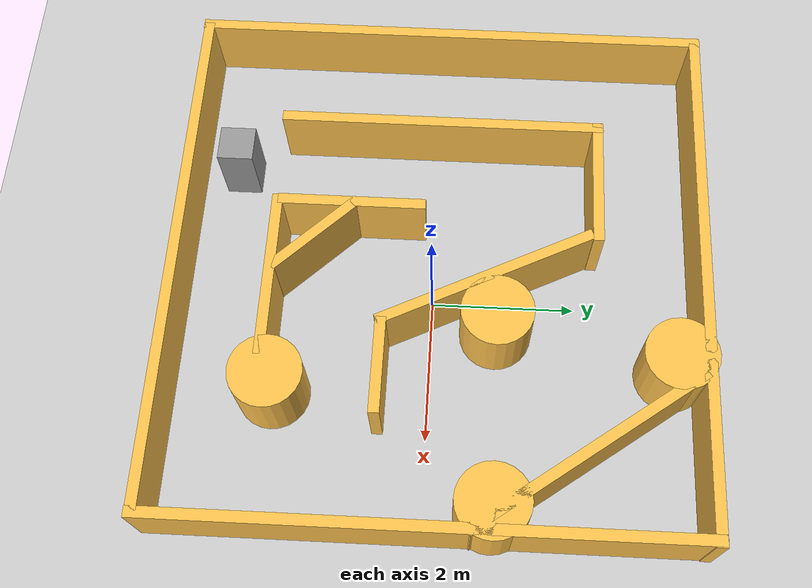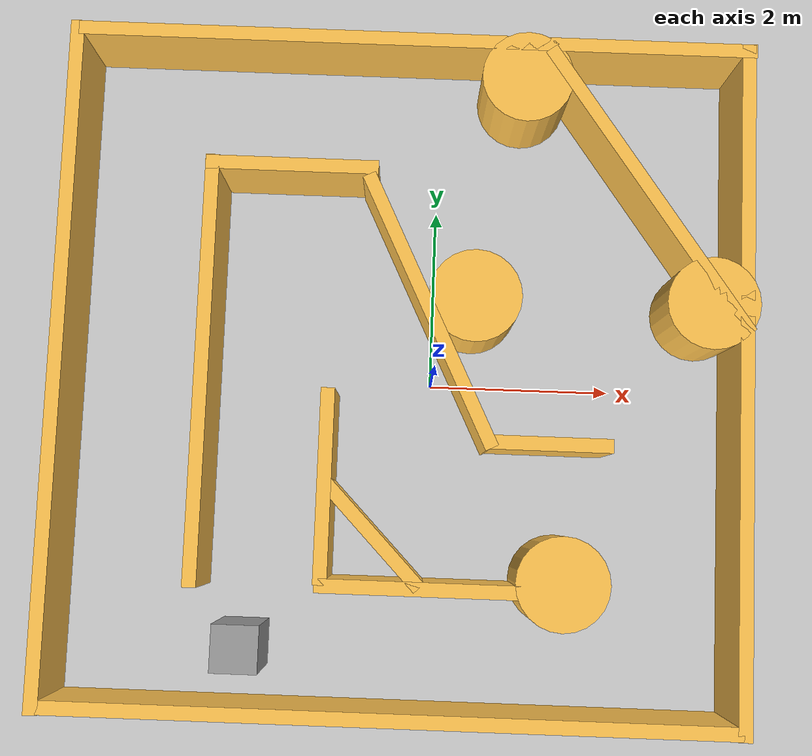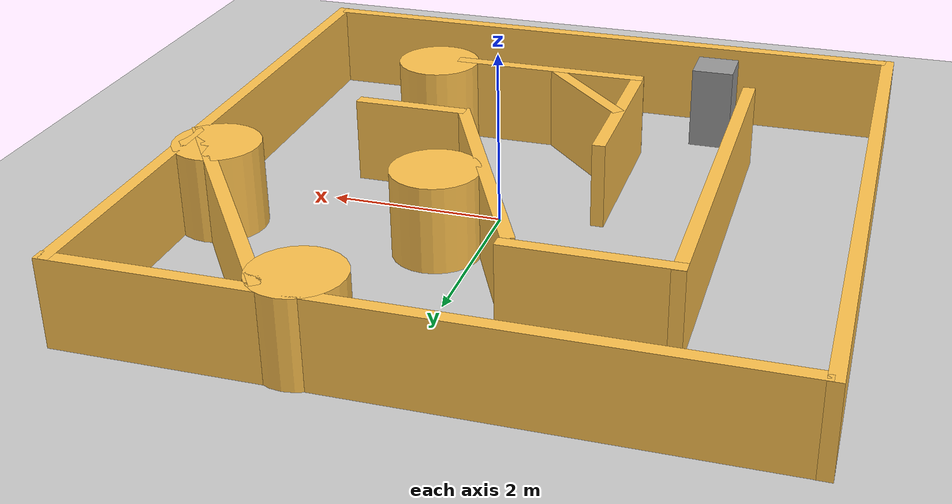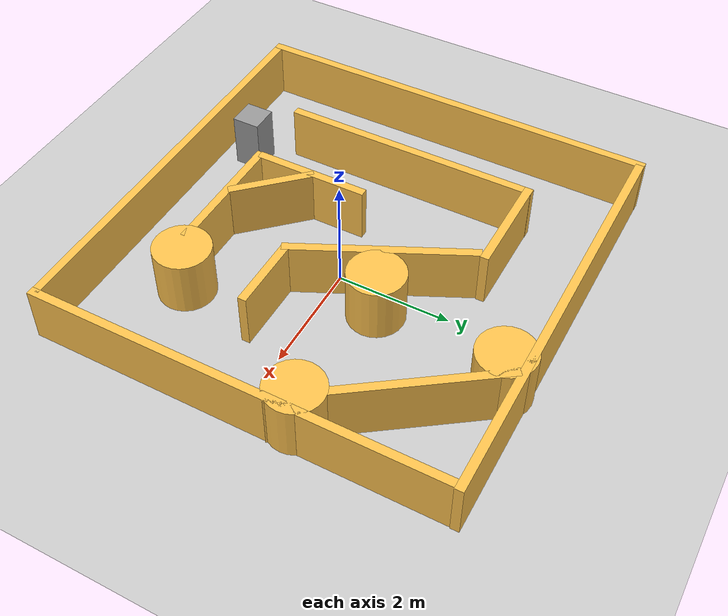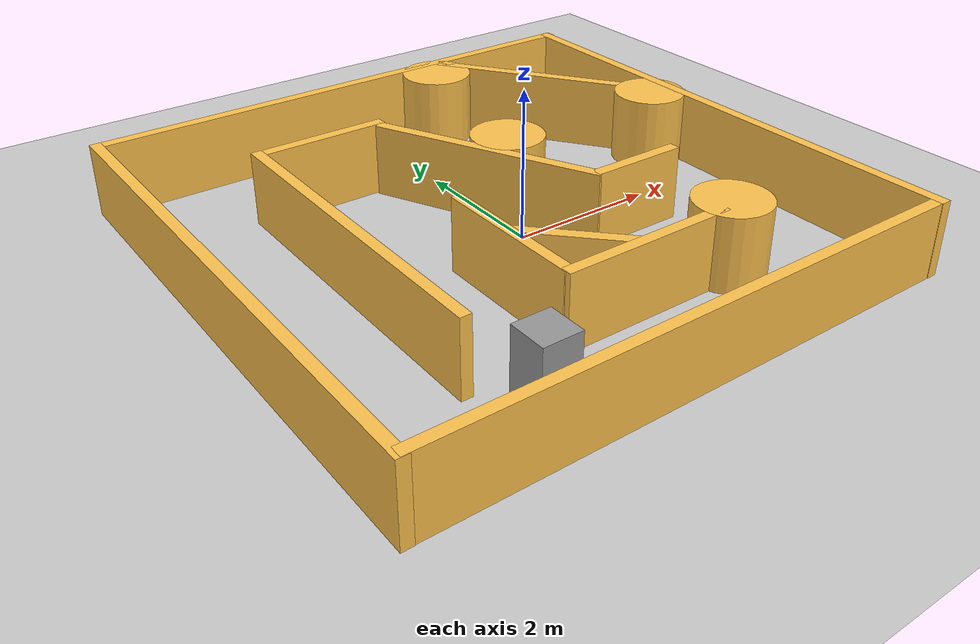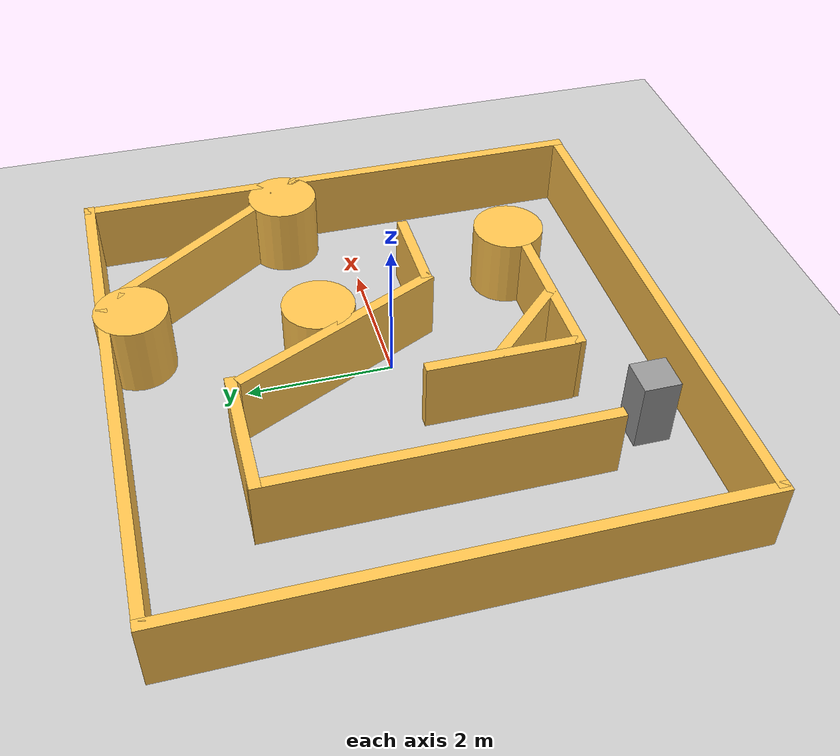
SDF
<sdf version="1.7">
 <world name="default">
  <light name="sun" type="directional">
   <pose>0 0 10 0 -0 0</pose>
   <diffuse>0.8 0.8 0.8 1</diffuse>
   <specular>0.2 0.2 0.2 1</specular>
   <attenuation>
    <range>1000</range>
    <constant>0.9</constant>
    <linear>0.01</linear>
    <quadratic>0.001</quadratic>
   </attenuation>
   <direction>-0.5 0.1 -0.9</direction>
   <spot><inner_angle>0</inner_angle><outer_angle>0</outer_angle><falloff>0</falloff></spot>
  </light>
  <model name="ground_plane">
   <static>1</static>
   <link name="link">
    <collision name="collision">
     <geometry><plane><normal>0 0 1</normal><size>100 100</size></plane></geometry>
     <surface><friction><ode><mu>100</mu><mu2>50</mu2></ode></friction></surface>
    </collision>
    <visual name="visual">
     <cast_shadows>0</cast_shadows>
     <geometry><plane><normal>0 0 1</normal><size>100 100</size></plane></geometry>
     <material>
      <script><uri>file://media/materials/scripts/gazebo.material</uri><name>Gazebo/Grey</name></script>
     </material>
    </visual>
   </link>
  </model>
  <gravity>0 0 -9.8</gravity>
  <magnetic_field>6e-06 2.3e-05 -4.2e-05</magnetic_field>
  <atmosphere type="adiabatic"/>
  <physics type="ode">
   <max_step_size>0.001</max_step_size>
   <real_time_factor>1</real_time_factor>
   <real_time_update_rate>1000</real_time_update_rate>
  </physics>
  <scene><ambient>0.4 0.4 0.4 1</ambient><background>0.7 0.7 0.7 1</background><shadows>1</shadows></scene>
  <audio><device>default</device></audio>
  <spherical_coordinates>
   <surface_model>EARTH_WGS84</surface_model>
   <latitude_deg>0</latitude_deg>
   <longitude_deg>0</longitude_deg>
   <elevation>0</elevation>
   <heading_deg>0</heading_deg>
  </spherical_coordinates>
  <model name="small_warehouse">
   <link name="Wall_10">
    <pose>-2.02568 2.92333 0 0 -0 3.14159</pose>
    <visual name="Wall_10_Visual">
     <pose>0 0 0.5 0 -0 0</pose>
     <geometry><box><size>1.8711 0.15 1</size></box></geometry>
     <material>
      <script><uri>file://media/materials/scripts/gazebo.material</uri><name>Gazebo/Grey</name></script>
      <ambient>1 0.764706 0.305882 1</ambient>
      <diffuse>0.7 0.7 0.7 1</diffuse>
      <specular>0.01 0.01 0.01 1</specular>
      <emissive>0 0 0 1</emissive>
      <shader type="pixel"/>
     </material>
    </visual>
    <collision name="Wall_10_Collision">
     <pose>0 0 0.5 0 -0 0</pose>
     <geometry><box><size>1.8711 0.15 1</size></box></geometry>
     <surface>
      <friction><ode><mu>1</mu><mu2>1</mu2><fdir1>0 0 0</fdir1><slip1>0</slip1><slip2>0</slip2></ode></friction>
      <bounce><restitution_coefficient>0</restitution_coefficient><threshold>1e+06</threshold></bounce>
      <contact>
       <collide_without_contact>0</collide_without_contact>
       <collide_without_contact_bitmask>1</collide_without_contact_bitmask>
       <collide_bitmask>1</collide_bitmask>
       <ode>
        <soft_cfm>0</soft_cfm>
        <soft_erp>0.2</soft_erp>
        <kp>1e+13</kp>
        <kd>1</kd>
        <max_vel>0.01</max_vel>
        <min_depth>0</min_depth>
       </ode>
       <bullet>
        <split_impulse>1</split_impulse>
        <split_impulse_penetration_threshold>-0.01</split_impulse_penetration_threshold>
        <soft_cfm>0</soft_cfm>
        <soft_erp>0.2</soft_erp>
        <kp>1e+13</kp>
        <kd>1</kd>
       </bullet>
      </contact>
     </surface>
    </collision>
   </link>
   <link name="Wall_11">
    <pose>-2.887 0.69235 0 0 0 -1.5708</pose>
    <visual name="Wall_11_Visual">
     <pose>0 0 0.5 0 -0 0</pose>
     <geometry><box><size>4.62378 0.15 1</size></box></geometry>
     <material>
      <script><uri>file://media/materials/scripts/gazebo.material</uri><name>Gazebo/Grey</name></script>
      <ambient>1 0.764706 0.305882 1</ambient>
      <diffuse>0.7 0.7 0.7 1</diffuse>
      <specular>0.01 0.01 0.01 1</specular>
      <emissive>0 0 0 1</emissive>
      <shader type="pixel"/>
     </material>
    </visual>
    <collision name="Wall_11_Collision">
     <pose>0 0 0.5 0 -0 0</pose>
     <geometry><box><size>4.62378 0.15 1</size></box></geometry>
     <surface>
      <friction><ode><mu>1</mu><mu2>1</mu2><fdir1>0 0 0</fdir1><slip1>0</slip1><slip2>0</slip2></ode></friction>
      <bounce><restitution_coefficient>0</restitution_coefficient><threshold>1e+06</threshold></bounce>
      <contact>
       <collide_without_contact>0</collide_without_contact>
       <collide_without_contact_bitmask>1</collide_without_contact_bitmask>
       <collide_bitmask>1</collide_bitmask>
       <ode>
        <soft_cfm>0</soft_cfm>
        <soft_erp>0.2</soft_erp>
        <kp>1e+13</kp>
        <kd>1</kd>
        <max_vel>0.01</max_vel>
        <min_depth>0</min_depth>
       </ode>
       <bullet>
        <split_impulse>1</split_impulse>
        <split_impulse_penetration_threshold>-0.01</split_impulse_penetration_threshold>
        <soft_cfm>0</soft_cfm>
        <soft_erp>0.2</soft_erp>
        <kp>1e+13</kp>
        <kd>1</kd>
       </bullet>
      </contact>
     </surface>
    </collision>
   </link>
   <link name="Wall_11_clone">
    <pose>-4.44208 0.738947 0 0 0 -1.5708</pose>
    <visual name="ModelPreview_2::Wall_11_clone::Wall_11_Visual">
     <pose>0 0 0.5 0 -0 0</pose>
     <geometry><box><size>7.42809 0.15 1</size></box></geometry>
     <material>
      <script><uri>file://media/materials/scripts/gazebo.material</uri><name>Gazebo/Grey</name></script>
      <ambient>1 0.764706 0.305882 1</ambient>
      <diffuse>0.7 0.7 0.7 1</diffuse>
      <specular>0.01 0.01 0.01 1</specular>
      <emissive>0 0 0 1</emissive>
      <shader type="pixel"/>
     </material>
    </visual>
    <collision name="Wall_11_Collision">
     <pose>0 0 0.5 0 -0 0</pose>
     <geometry><box><size>7.42809 0.15 1</size></box></geometry>
     <surface>
      <friction><ode><mu>1</mu><mu2>1</mu2><fdir1>0 0 0</fdir1><slip1>0</slip1><slip2>0</slip2></ode></friction>
      <bounce><restitution_coefficient>0</restitution_coefficient><threshold>1e+06</threshold></bounce>
      <contact>
       <collide_without_contact>0</collide_without_contact>
       <collide_without_contact_bitmask>1</collide_without_contact_bitmask>
       <collide_bitmask>1</collide_bitmask>
       <ode>
        <soft_cfm>0</soft_cfm>
        <soft_erp>0.2</soft_erp>
        <kp>1e+13</kp>
        <kd>1</kd>
        <max_vel>0.01</max_vel>
        <min_depth>0</min_depth>
       </ode>
       <bullet>
        <split_impulse>1</split_impulse>
        <split_impulse_penetration_threshold>-0.01</split_impulse_penetration_threshold>
        <soft_cfm>0</soft_cfm>
        <soft_erp>0.2</soft_erp>
        <kp>1e+13</kp>
        <kd>1</kd>
       </bullet>
      </contact>
     </surface>
    </collision>
   </link>
   <link name="Wall_14">
    <pose>-0.409926 -1.55115 0 0 -0 3.14159</pose>
    <visual name="Wall_14_Visual">
     <pose>0 0 0.5 0 -0 0</pose>
     <geometry><box><size>2.36648 0.15 1</size></box></geometry>
     <material>
      <script><uri>file://media/materials/scripts/gazebo.material</uri><name>Gazebo/Grey</name></script>
      <ambient>1 0.764706 0.305882 1</ambient>
      <diffuse>0.7 0.7 0.7 1</diffuse>
      <specular>0.01 0.01 0.01 1</specular>
      <emissive>0 0 0 1</emissive>
      <shader type="pixel"/>
     </material>
    </visual>
    <collision name="Wall_14_Collision">
     <pose>0 0 0.5 0 -0 0</pose>
     <geometry><box><size>2.36648 0.15 1</size></box></geometry>
     <surface>
      <friction><ode><mu>1</mu><mu2>1</mu2><fdir1>0 0 0</fdir1><slip1>0</slip1><slip2>0</slip2></ode></friction>
      <bounce><restitution_coefficient>0</restitution_coefficient><threshold>1e+06</threshold></bounce>
      <contact>
       <collide_without_contact>0</collide_without_contact>
       <collide_without_contact_bitmask>1</collide_without_contact_bitmask>
       <collide_bitmask>1</collide_bitmask>
       <ode>
        <soft_cfm>0</soft_cfm>
        <soft_erp>0.2</soft_erp>
        <kp>1e+13</kp>
        <kd>1</kd>
        <max_vel>0.01</max_vel>
        <min_depth>0</min_depth>
       </ode>
       <bullet>
        <split_impulse>1</split_impulse>
        <split_impulse_penetration_threshold>-0.01</split_impulse_penetration_threshold>
        <soft_cfm>0</soft_cfm>
        <soft_erp>0.2</soft_erp>
        <kp>1e+13</kp>
        <kd>1</kd>
       </bullet>
      </contact>
     </surface>
    </collision>
   </link>
   <link name="Wall_15">
    <pose>-1.53187 -0.513425 0 0 -0 1.5708</pose>
    <visual name="Wall_15_Visual">
     <pose>0 0 0.5 0 -0 0</pose>
     <geometry><box><size>2.06622 0.15 1</size></box></geometry>
     <material>
      <script><uri>file://media/materials/scripts/gazebo.material</uri><name>Gazebo/Grey</name></script>
      <ambient>1 0.764706 0.305882 1</ambient>
      <diffuse>0.7 0.7 0.7 1</diffuse>
      <specular>0.01 0.01 0.01 1</specular>
      <emissive>0 0 0 1</emissive>
      <shader type="pixel"/>
     </material>
    </visual>
    <collision name="Wall_15_Collision">
     <pose>0 0 0.5 0 -0 0</pose>
     <geometry><box><size>2.06622 0.15 1</size></box></geometry>
     <surface>
      <friction><ode><mu>1</mu><mu2>1</mu2><fdir1>0 0 0</fdir1><slip1>0</slip1><slip2>0</slip2></ode></friction>
      <bounce><restitution_coefficient>0</restitution_coefficient><threshold>1e+06</threshold></bounce>
      <contact>
       <collide_without_contact>0</collide_without_contact>
       <collide_without_contact_bitmask>1</collide_without_contact_bitmask>
       <collide_bitmask>1</collide_bitmask>
       <ode>
        <soft_cfm>0</soft_cfm>
        <soft_erp>0.2</soft_erp>
        <kp>1e+13</kp>
        <kd>1</kd>
        <max_vel>0.01</max_vel>
        <min_depth>0</min_depth>
       </ode>
       <bullet>
        <split_impulse>1</split_impulse>
        <split_impulse_penetration_threshold>-0.01</split_impulse_penetration_threshold>
        <soft_cfm>0</soft_cfm>
        <soft_erp>0.2</soft_erp>
        <kp>1e+13</kp>
        <kd>1</kd>
       </bullet>
      </contact>
     </surface>
    </collision>
   </link>
   <link name="Wall_19">
    <pose>0.837565 0.010614 0 0 -0 3.14159</pose>
    <visual name="Wall_19_Visual">
     <pose>0 0 0.5 0 -0 0</pose>
     <geometry><box><size>1.32777 0.15 1</size></box></geometry>
     <material>
      <script><uri>file://media/materials/scripts/gazebo.material</uri><name>Gazebo/Grey</name></script>
      <ambient>1 0.764706 0.305882 1</ambient>
      <diffuse>0.7 0.7 0.7 1</diffuse>
      <specular>0.01 0.01 0.01 1</specular>
      <emissive>0 0 0 1</emissive>
      <shader type="pixel"/>
     </material>
    </visual>
    <collision name="Wall_19_Collision">
     <pose>0 0 0.5 0 -0 0</pose>
     <geometry><box><size>1.32777 0.15 1</size></box></geometry>
     <surface>
      <friction><ode><mu>1</mu><mu2>1</mu2><fdir1>0 0 0</fdir1><slip1>0</slip1><slip2>0</slip2></ode></friction>
      <bounce><restitution_coefficient>0</restitution_coefficient><threshold>1e+06</threshold></bounce>
      <contact>
       <collide_without_contact>0</collide_without_contact>
       <collide_without_contact_bitmask>1</collide_without_contact_bitmask>
       <collide_bitmask>1</collide_bitmask>
       <ode>
        <soft_cfm>0</soft_cfm>
        <soft_erp>0.2</soft_erp>
        <kp>1e+13</kp>
        <kd>1</kd>
        <max_vel>0.01</max_vel>
        <min_depth>0</min_depth>
       </ode>
       <bullet>
        <split_impulse>1</split_impulse>
        <split_impulse_penetration_threshold>-0.01</split_impulse_penetration_threshold>
        <soft_cfm>0</soft_cfm>
        <soft_erp>0.2</soft_erp>
        <kp>1e+13</kp>
        <kd>1</kd>
       </bullet>
      </contact>
     </surface>
    </collision>
   </link>
   <link name="Wall_20">
    <pose>-0.484506 1.39698 0 0 -0 2.02352</pose>
    <visual name="Wall_20_Visual">
     <pose>0 0 0.5 0 -0 0</pose>
     <geometry><box><size>3.22686 0.15 1</size></box></geometry>
     <material>
      <script><uri>file://media/materials/scripts/gazebo.material</uri><name>Gazebo/Grey</name></script>
      <ambient>1 0.764706 0.305882 1</ambient>
      <diffuse>0.7 0.7 0.7 1</diffuse>
      <specular>0.01 0.01 0.01 1</specular>
      <emissive>0 0 0 1</emissive>
      <shader type="pixel"/>
     </material>
    </visual>
    <collision name="Wall_20_Collision">
     <pose>0 0 0.5 0 -0 0</pose>
     <geometry><box><size>3.22686 0.15 1</size></box></geometry>
     <surface>
      <friction><ode><mu>1</mu><mu2>1</mu2><fdir1>0 0 0</fdir1><slip1>0</slip1><slip2>0</slip2></ode></friction>
      <bounce><restitution_coefficient>0</restitution_coefficient><threshold>1e+06</threshold></bounce>
      <contact>
       <collide_without_contact>0</collide_without_contact>
       <collide_without_contact_bitmask>1</collide_without_contact_bitmask>
       <collide_bitmask>1</collide_bitmask>
       <ode>
        <soft_cfm>0</soft_cfm>
        <soft_erp>0.2</soft_erp>
        <kp>1e+13</kp>
        <kd>1</kd>
        <max_vel>0.01</max_vel>
        <min_depth>0</min_depth>
       </ode>
       <bullet>
        <split_impulse>1</split_impulse>
        <split_impulse_penetration_threshold>-0.01</split_impulse_penetration_threshold>
        <soft_cfm>0</soft_cfm>
        <soft_erp>0.2</soft_erp>
        <kp>1e+13</kp>
        <kd>1</kd>
       </bullet>
      </contact>
     </surface>
    </collision>
   </link>
   <link name="Wall_24">
    <pose>1.8412 2.79579 0 0 0 -0.948986</pose>
    <visual name="Wall_24_Visual">
     <pose>0 0 0.5 0 -0 0</pose>
     <geometry><box><size>3.76645 0.15 1</size></box></geometry>
     <material>
      <script><uri>file://media/materials/scripts/gazebo.material</uri><name>Gazebo/Grey</name></script>
      <ambient>1 0.764706 0.305882 1</ambient>
      <diffuse>0.7 0.7 0.7 1</diffuse>
      <specular>0.01 0.01 0.01 1</specular>
      <emissive>0 0 0 1</emissive>
      <shader type="pixel"/>
     </material>
    </visual>
    <collision name="Wall_24_Collision">
     <pose>0 0 0.5 0 -0 0</pose>
     <geometry><box><size>3.76645 0.15 1</size></box></geometry>
     <surface>
      <friction><ode><mu>1</mu><mu2>1</mu2><fdir1>0 0 0</fdir1><slip1>0</slip1><slip2>0</slip2></ode></friction>
      <bounce><restitution_coefficient>0</restitution_coefficient><threshold>1e+06</threshold></bounce>
      <contact>
       <collide_without_contact>0</collide_without_contact>
       <collide_without_contact_bitmask>1</collide_without_contact_bitmask>
       <collide_bitmask>1</collide_bitmask>
       <ode>
        <soft_cfm>0</soft_cfm>
        <soft_erp>0.2</soft_erp>
        <kp>1e+13</kp>
        <kd>1</kd>
        <max_vel>0.01</max_vel>
        <min_depth>0</min_depth>
       </ode>
       <bullet>
        <split_impulse>1</split_impulse>
        <split_impulse_penetration_threshold>-0.01</split_impulse_penetration_threshold>
        <soft_cfm>0</soft_cfm>
        <soft_erp>0.2</soft_erp>
        <kp>1e+13</kp>
        <kd>1</kd>
       </bullet>
      </contact>
     </surface>
    </collision>
   </link>
   <link name="Wall_24_clone">
    <pose>-1.0172 -1.00075 0 0 0 -0.803995</pose>
    <visual name="ModelPreview_2::Wall_24_clone::Wall_24_Visual">
     <pose>0 0 0.5 0 -0 0</pose>
     <geometry><box><size>1.5 0.15 1</size></box></geometry>
     <material>
      <script><uri>file://media/materials/scripts/gazebo.material</uri><name>Gazebo/Grey</name></script>
      <ambient>1 0.764706 0.305882 1</ambient>
      <diffuse>0.7 0.7 0.7 1</diffuse>
      <specular>0.01 0.01 0.01 1</specular>
      <emissive>0 0 0 1</emissive>
      <shader type="pixel"/>
     </material>
    </visual>
    <collision name="Wall_24_Collision">
     <pose>0 0 0.5 0 -0 0</pose>
     <geometry><box><size>1.5 0.15 1</size></box></geometry>
     <surface>
      <friction><ode><mu>1</mu><mu2>1</mu2><fdir1>0 0 0</fdir1><slip1>0</slip1><slip2>0</slip2></ode></friction>
      <bounce><restitution_coefficient>0</restitution_coefficient><threshold>1e+06</threshold></bounce>
      <contact>
       <collide_without_contact>0</collide_without_contact>
       <collide_without_contact_bitmask>1</collide_without_contact_bitmask>
       <collide_bitmask>1</collide_bitmask>
       <ode>
        <soft_cfm>0</soft_cfm>
        <soft_erp>0.2</soft_erp>
        <kp>1e+13</kp>
        <kd>1</kd>
        <max_vel>0.01</max_vel>
        <min_depth>0</min_depth>
       </ode>
       <bullet>
        <split_impulse>1</split_impulse>
        <split_impulse_penetration_threshold>-0.01</split_impulse_penetration_threshold>
        <soft_cfm>0</soft_cfm>
        <soft_erp>0.2</soft_erp>
        <kp>1e+13</kp>
        <kd>1</kd>
       </bullet>
      </contact>
     </surface>
    </collision>
   </link>
   <link name="Wall_6">
    <pose>-0.787021 -2.89307 0 0 -0 0</pose>
    <visual name="Wall_6_Visual">
     <pose>0 0 0.5 0 -0 0</pose>
     <geometry><box><size>7.34986 0.15 1</size></box></geometry>
     <material>
      <script><uri>file://media/materials/scripts/gazebo.material</uri><name>Gazebo/Grey</name></script>
      <ambient>1 0.764706 0.305882 1</ambient>
      <diffuse>0.7 0.7 0.7 1</diffuse>
      <specular>0.01 0.01 0.01 1</specular>
      <emissive>0 0 0 1</emissive>
      <shader type="pixel"/>
     </material>
    </visual>
    <collision name="Wall_6_Collision">
     <pose>0 0 0.5 0 -0 0</pose>
     <geometry><box><size>7.34986 0.15 1</size></box></geometry>
     <surface>
      <friction><ode><mu>1</mu><mu2>1</mu2><fdir1>0 0 0</fdir1><slip1>0</slip1><slip2>0</slip2></ode></friction>
      <bounce><restitution_coefficient>0</restitution_coefficient><threshold>1e+06</threshold></bounce>
      <contact>
       <collide_without_contact>0</collide_without_contact>
       <collide_without_contact_bitmask>1</collide_without_contact_bitmask>
       <collide_bitmask>1</collide_bitmask>
       <ode>
        <soft_cfm>0</soft_cfm>
        <soft_erp>0.2</soft_erp>
        <kp>1e+13</kp>
        <kd>1</kd>
        <max_vel>0.01</max_vel>
        <min_depth>0</min_depth>
       </ode>
       <bullet>
        <split_impulse>1</split_impulse>
        <split_impulse_penetration_threshold>-0.01</split_impulse_penetration_threshold>
        <soft_cfm>0</soft_cfm>
        <soft_erp>0.2</soft_erp>
        <kp>1e+13</kp>
        <kd>1</kd>
       </bullet>
      </contact>
     </surface>
    </collision>
   </link>
   <link name="Wall_6_clone">
    <pose>-0.718431 4.37517 0 0 -0 0</pose>
    <visual name="ModelPreview_2::Wall_6_clone::Wall_6_Visual">
     <pose>0 0 0.5 0 -0 0</pose>
     <geometry><box><size>7.41907 0.15 1</size></box></geometry>
     <material>
      <script><uri>file://media/materials/scripts/gazebo.material</uri><name>Gazebo/Grey</name></script>
      <ambient>1 0.764706 0.305882 1</ambient>
      <diffuse>0.7 0.7 0.7 1</diffuse>
      <specular>0.01 0.01 0.01 1</specular>
      <emissive>0 0 0 1</emissive>
      <shader type="pixel"/>
     </material>
    </visual>
    <collision name="Wall_6_Collision">
     <pose>0 0 0.5 0 -0 0</pose>
     <geometry><box><size>7.41907 0.15 1</size></box></geometry>
     <surface>
      <friction><ode><mu>1</mu><mu2>1</mu2><fdir1>0 0 0</fdir1><slip1>0</slip1><slip2>0</slip2></ode></friction>
      <bounce><restitution_coefficient>0</restitution_coefficient><threshold>1e+06</threshold></bounce>
      <contact>
       <collide_without_contact>0</collide_without_contact>
       <collide_without_contact_bitmask>1</collide_without_contact_bitmask>
       <collide_bitmask>1</collide_bitmask>
       <ode>
        <soft_cfm>0</soft_cfm>
        <soft_erp>0.2</soft_erp>
        <kp>1e+13</kp>
        <kd>1</kd>
        <max_vel>0.01</max_vel>
        <min_depth>0</min_depth>
       </ode>
       <bullet>
        <split_impulse>1</split_impulse>
        <split_impulse_penetration_threshold>-0.01</split_impulse_penetration_threshold>
        <soft_cfm>0</soft_cfm>
        <soft_erp>0.2</soft_erp>
        <kp>1e+13</kp>
        <kd>1</kd>
       </bullet>
      </contact>
     </surface>
    </collision>
   </link>
   <link name="Wall_7">
    <pose>2.90228 0.736783 0 0 -0 1.5708</pose>
    <visual name="Wall_7_Visual">
     <pose>0 0 0.5 0 -0 0</pose>
     <geometry><box><size>7.42238 0.15 1</size></box></geometry>
     <material>
      <script><uri>file://media/materials/scripts/gazebo.material</uri><name>Gazebo/Grey</name></script>
      <ambient>1 0.764706 0.305882 1</ambient>
      <diffuse>0.7 0.7 0.7 1</diffuse>
      <specular>0.01 0.01 0.01 1</specular>
      <emissive>0 0 0 1</emissive>
      <shader type="pixel"/>
     </material>
    </visual>
    <collision name="Wall_7_Collision">
     <pose>0 0 0.5 0 -0 0</pose>
     <geometry><box><size>7.42238 0.15 1</size></box></geometry>
     <surface>
      <friction><ode><mu>1</mu><mu2>1</mu2><fdir1>0 0 0</fdir1><slip1>0</slip1><slip2>0</slip2></ode></friction>
      <bounce><restitution_coefficient>0</restitution_coefficient><threshold>1e+06</threshold></bounce>
      <contact>
       <collide_without_contact>0</collide_without_contact>
       <collide_without_contact_bitmask>1</collide_without_contact_bitmask>
       <collide_bitmask>1</collide_bitmask>
       <ode>
        <soft_cfm>0</soft_cfm>
        <soft_erp>0.2</soft_erp>
        <kp>1e+13</kp>
        <kd>1</kd>
        <max_vel>0.01</max_vel>
        <min_depth>0</min_depth>
       </ode>
       <bullet>
        <split_impulse>1</split_impulse>
        <split_impulse_penetration_threshold>-0.01</split_impulse_penetration_threshold>
        <soft_cfm>0</soft_cfm>
        <soft_erp>0.2</soft_erp>
        <kp>1e+13</kp>
        <kd>1</kd>
       </bullet>
      </contact>
     </surface>
    </collision>
   </link>
   <link name="link_1">
    <pose>1 -1.44562 0.5 0 -0 0</pose>
    <visual name="visual">
     <geometry><cylinder><radius>0.5</radius><length>1</length></cylinder></geometry>
     <material>
      <script><uri>file://media/materials/scripts/gazebo.material</uri><name>Gazebo/Grey</name></script>
      <ambient>1 0.764706 0.305882 1</ambient>
      <diffuse>0.7 0.7 0.7 1</diffuse>
      <specular>0.01 0.01 0.01 1</specular>
      <emissive>0 0 0 1</emissive>
      <shader type="pixel"/>
     </material>
    </visual>
    <collision name="collision">
     <geometry><cylinder><radius>0.5</radius><length>1</length></cylinder></geometry>
     <surface>
      <friction><ode><mu>1</mu><mu2>1</mu2><fdir1>0 0 0</fdir1><slip1>0</slip1><slip2>0</slip2></ode></friction>
      <bounce><restitution_coefficient>0</restitution_coefficient><threshold>1e+06</threshold></bounce>
      <contact>
       <collide_without_contact>0</collide_without_contact>
       <collide_without_contact_bitmask>1</collide_without_contact_bitmask>
       <collide_bitmask>1</collide_bitmask>
       <ode>
        <soft_cfm>0</soft_cfm>
        <soft_erp>0.2</soft_erp>
        <kp>1e+13</kp>
        <kd>1</kd>
        <max_vel>0.01</max_vel>
        <min_depth>0</min_depth>
       </ode>
       <bullet>
        <split_impulse>1</split_impulse>
        <split_impulse_penetration_threshold>-0.01</split_impulse_penetration_threshold>
        <soft_cfm>0</soft_cfm>
        <soft_erp>0.2</soft_erp>
        <kp>1e+13</kp>
        <kd>1</kd>
       </bullet>
      </contact>
     </surface>
    </collision>
   </link>
   <link name="link_2">
    <pose>0.498835 4 0.5 0 -0 0</pose>
    <visual name="visual">
     <geometry><cylinder><radius>0.5</radius><length>1</length></cylinder></geometry>
     <material>
      <script><uri>file://media/materials/scripts/gazebo.material</uri><name>Gazebo/Grey</name></script>
      <ambient>1 0.764706 0.305882 1</ambient>
      <diffuse>0.7 0.7 0.7 1</diffuse>
      <specular>0.01 0.01 0.01 1</specular>
      <emissive>0 0 0 1</emissive>
      <shader type="pixel"/>
     </material>
    </visual>
    <collision name="collision">
     <geometry><cylinder><radius>0.5</radius><length>1</length></cylinder></geometry>
     <surface>
      <friction><ode><mu>1</mu><mu2>1</mu2><fdir1>0 0 0</fdir1><slip1>0</slip1><slip2>0</slip2></ode></friction>
      <bounce><restitution_coefficient>0</restitution_coefficient><threshold>1e+06</threshold></bounce>
      <contact>
       <collide_without_contact>0</collide_without_contact>
       <collide_without_contact_bitmask>1</collide_without_contact_bitmask>
       <collide_bitmask>1</collide_bitmask>
       <ode>
        <soft_cfm>0</soft_cfm>
        <soft_erp>0.2</soft_erp>
        <kp>1e+13</kp>
        <kd>1</kd>
        <max_vel>0.01</max_vel>
        <min_depth>0</min_depth>
       </ode>
       <bullet>
        <split_impulse>1</split_impulse>
        <split_impulse_penetration_threshold>-0.01</split_impulse_penetration_threshold>
        <soft_cfm>0</soft_cfm>
        <soft_erp>0.2</soft_erp>
        <kp>1e+13</kp>
        <kd>1</kd>
       </bullet>
      </contact>
     </surface>
    </collision>
   </link>
   <link name="link_3">
    <pose>0 1.56543 0.5 0 -0 0</pose>
    <visual name="visual">
     <geometry><cylinder><radius>0.5</radius><length>1</length></cylinder></geometry>
     <material>
      <script><uri>file://media/materials/scripts/gazebo.material</uri><name>Gazebo/Grey</name></script>
      <ambient>1 0.764706 0.305882 1</ambient>
      <diffuse>0.7 0.7 0.7 1</diffuse>
      <specular>0.01 0.01 0.01 1</specular>
      <emissive>0 0 0 1</emissive>
      <shader type="pixel"/>
     </material>
    </visual>
    <collision name="collision">
     <geometry><cylinder><radius>0.5</radius><length>1</length></cylinder></geometry>
     <surface>
      <friction><ode><mu>1</mu><mu2>1</mu2><fdir1>0 0 0</fdir1><slip1>0</slip1><slip2>0</slip2></ode></friction>
      <bounce><restitution_coefficient>0</restitution_coefficient><threshold>1e+06</threshold></bounce>
      <contact>
       <collide_without_contact>0</collide_without_contact>
       <collide_without_contact_bitmask>1</collide_without_contact_bitmask>
       <collide_bitmask>1</collide_bitmask>
       <ode>
        <soft_cfm>0</soft_cfm>
        <soft_erp>0.2</soft_erp>
        <kp>1e+13</kp>
        <kd>1</kd>
        <max_vel>0.01</max_vel>
        <min_depth>0</min_depth>
       </ode>
       <bullet>
        <split_impulse>1</split_impulse>
        <split_impulse_penetration_threshold>-0.01</split_impulse_penetration_threshold>
        <soft_cfm>0</soft_cfm>
        <soft_erp>0.2</soft_erp>
        <kp>1e+13</kp>
        <kd>1</kd>
       </bullet>
      </contact>
     </surface>
    </collision>
   </link>
   <link name="link_4">
    <pose>2.54621 1.57728 0.5 0 -0 0</pose>
    <visual name="visual">
     <geometry><cylinder><radius>0.5</radius><length>1</length></cylinder></geometry>
     <material>
      <script><uri>file://media/materials/scripts/gazebo.material</uri><name>Gazebo/Grey</name></script>
      <ambient>1 0.764706 0.305882 1</ambient>
      <diffuse>0.7 0.7 0.7 1</diffuse>
      <specular>0.01 0.01 0.01 1</specular>
      <emissive>0 0 0 1</emissive>
      <shader type="pixel"/>
     </material>
    </visual>
    <collision name="collision">
     <geometry><cylinder><radius>0.5</radius><length>1</length></cylinder></geometry>
     <surface>
      <friction><ode><mu>1</mu><mu2>1</mu2><fdir1>0 0 0</fdir1><slip1>0</slip1><slip2>0</slip2></ode></friction>
      <bounce><restitution_coefficient>0</restitution_coefficient><threshold>1e+06</threshold></bounce>
      <contact>
       <collide_without_contact>0</collide_without_contact>
       <collide_without_contact_bitmask>1</collide_without_contact_bitmask>
       <collide_bitmask>1</collide_bitmask>
       <ode>
        <soft_cfm>0</soft_cfm>
        <soft_erp>0.2</soft_erp>
        <kp>1e+13</kp>
        <kd>1</kd>
        <max_vel>0.01</max_vel>
        <min_depth>0</min_depth>
       </ode>
       <bullet>
        <split_impulse>1</split_impulse>
        <split_impulse_penetration_threshold>-0.01</split_impulse_penetration_threshold>
        <soft_cfm>0</soft_cfm>
        <soft_erp>0.2</soft_erp>
        <kp>1e+13</kp>
        <kd>1</kd>
       </bullet>
      </contact>
     </surface>
    </collision>
   </link>
   <static>1</static>
   <pose>0.432237 -0.665871 0 0 -0 0</pose>
  </model>
  <model name="unit_box">
   <pose>-1.95062 -2.89714 0.5 0 -0 0</pose>
   <link name="link">
    <inertial>
     <mass>1</mass>
     <inertia>
      <ixx>0.166667</ixx>
      <ixy>0</ixy>
      <ixz>0</ixz>
      <iyy>0.166667</iyy>
      <iyz>0</iyz>
      <izz>0.166667</izz>
     </inertia>
    </inertial>
    <collision name="collision"><geometry><box><size>0.5 0.5 1</size></box></geometry></collision>
    <visual name="visual">
     <geometry><box><size>0.5 0.5 1</size></box></geometry>
     <material>
      <script><name>Gazebo/Grey</name><uri>file://media/materials/scripts/gazebo.material</uri></script>
     </material>
    </visual>
   </link>
  </model>
 </world>
</sdf>
